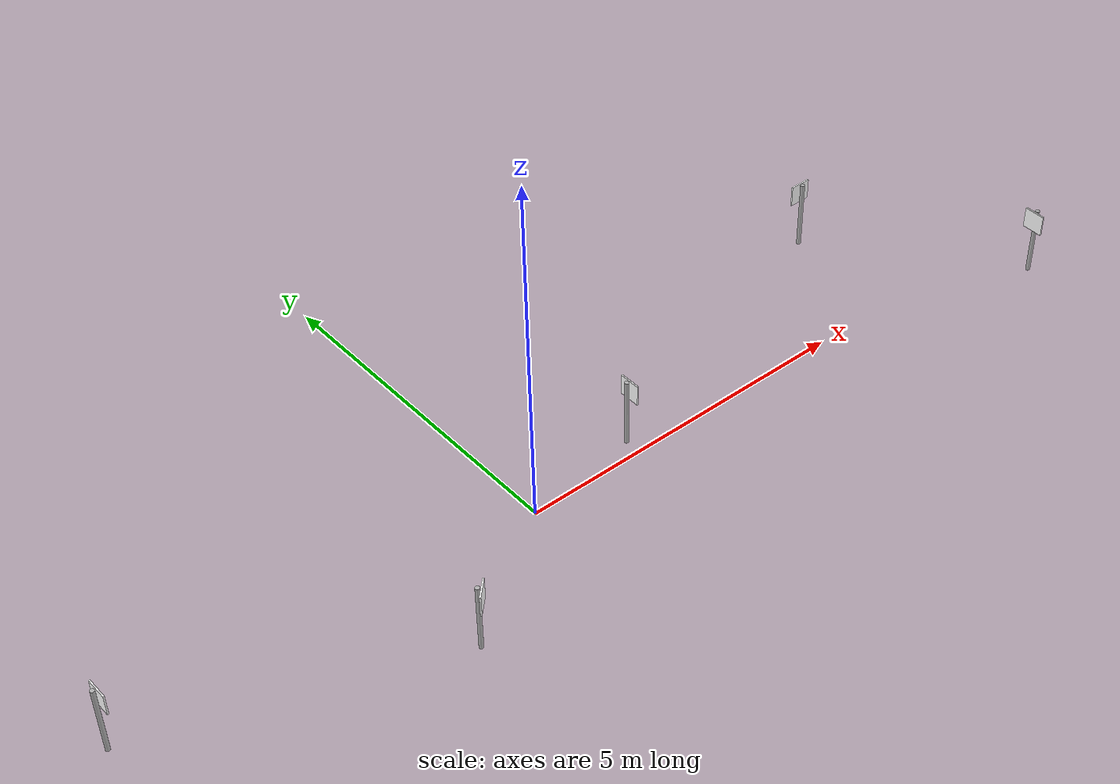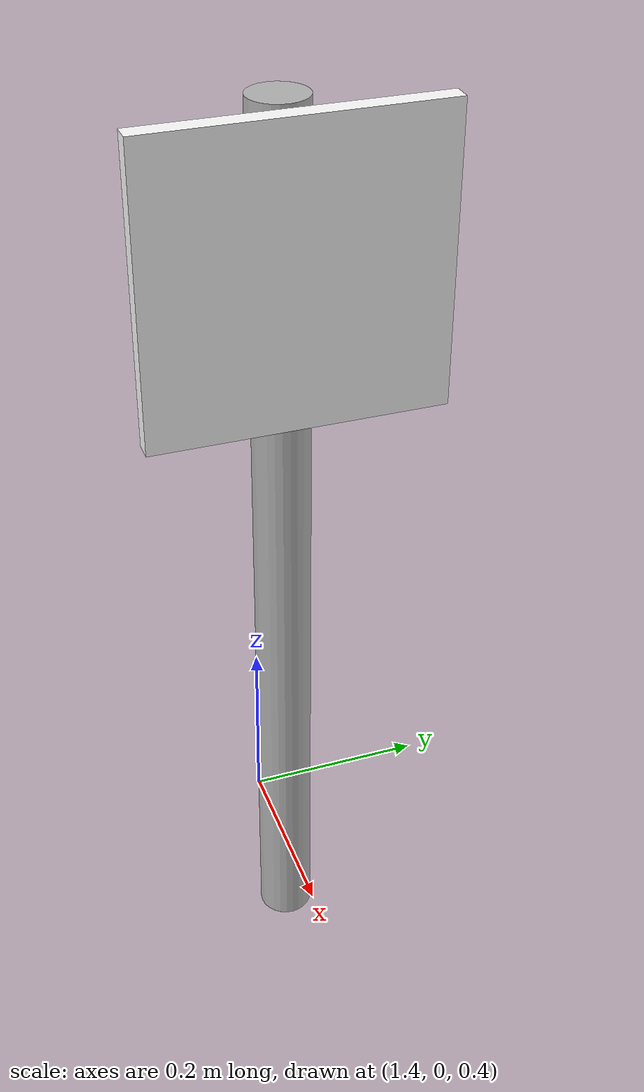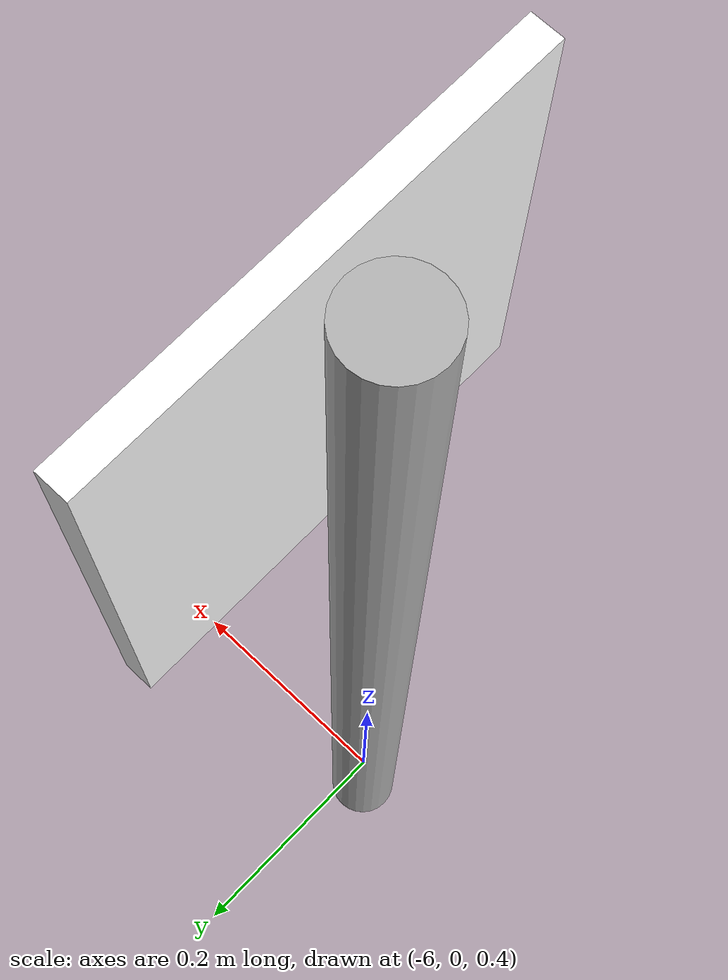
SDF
<sdf version="1.6">
 <world name="mars_yard">
  <light name="sun" type="directional">
   <pose>0 0 50 0 0.3 0.5</pose>
   <diffuse>0.9 0.7 0.5 1</diffuse>
   <specular>0.3 0.2 0.1 1</specular>
   <direction>-0.5 0.3 -0.8</direction>
  </light>
  <scene>
   <ambient>0.3 0.2 0.15 1</ambient>
   <background>0.55 0.35 0.2 1</background>
   <sky><clouds><speed>0</speed></clouds></sky>
  </scene>
  <physics type="ode">
   <real_time_update_rate>1000</real_time_update_rate>
   <max_step_size>0.001</max_step_size>
   <real_time_factor>1</real_time_factor>
   <ode>
    <solver><type>quick</type><iters>150</iters><sor>1.4</sor></solver>
    <constraints>
     <cfm>0.00001</cfm>
     <erp>0.2</erp>
     <contact_max_correcting_vel>100</contact_max_correcting_vel>
     <contact_surface_layer>0.001</contact_surface_layer>
    </constraints>
   </ode>
  </physics>
  <model name="aruco_stand_0">
   <static>true</static>
   <pose>1.5 0 0.3 0 0 0</pose>
   <link name="pole">
    <collision name="col">
     <geometry><cylinder><radius>0.03</radius><length>1.0</length></cylinder></geometry>
    </collision>
    <visual name="vis">
     <pose>0 0 0.5 0 0 0</pose>
     <geometry><cylinder><radius>0.03</radius><length>1.0</length></cylinder></geometry>
     <material><ambient>0.6 0.6 0.6 1</ambient><diffuse>0.7 0.7 0.7 1</diffuse></material>
    </visual>
   </link>
   <link name="board">
    <pose>0.05 0 0.85 0 0 0</pose>
    <collision name="col"><geometry><box><size>0.02 0.3 0.3</size></box></geometry></collision>
    <visual name="vis">
     <geometry><box><size>0.02 0.3 0.3</size></box></geometry>
     <material><ambient>1 1 1 1</ambient><diffuse>1 1 1 1</diffuse></material>
    </visual>
   </link>
   <joint name="pole_board" type="fixed"><parent>pole</parent><child>board</child></joint>
  </model>
  <model name="aruco_stand_1">
   <static>true</static>
   <pose>6.0 1.5 0.3 0 0 1.57</pose>
   <link name="pole">
    <collision name="col">
     <geometry><cylinder><radius>0.03</radius><length>1.0</length></cylinder></geometry>
    </collision>
    <visual name="vis">
     <pose>0 0 0.5 0 0 0</pose>
     <geometry><cylinder><radius>0.03</radius><length>1.0</length></cylinder></geometry>
     <material><ambient>0.6 0.6 0.6 1</ambient><diffuse>0.7 0.7 0.7 1</diffuse></material>
    </visual>
   </link>
   <link name="board">
    <pose>0.05 0 0.85 0 0 0</pose>
    <collision name="col"><geometry><box><size>0.02 0.3 0.3</size></box></geometry></collision>
    <visual name="vis">
     <geometry><box><size>0.02 0.3 0.3</size></box></geometry>
     <material><ambient>1 1 1 1</ambient><diffuse>1 1 1 1</diffuse></material>
    </visual>
   </link>
   <joint name="pole_board" type="fixed"><parent>pole</parent><child>board</child></joint>
  </model>
  <model name="aruco_stand_2">
   <static>true</static>
   <pose>-2.0 -1.5 0.3 0 0 -0.785</pose>
   <link name="pole">
    <collision name="col">
     <geometry><cylinder><radius>0.03</radius><length>1.0</length></cylinder></geometry>
    </collision>
    <visual name="vis">
     <pose>0 0 0.5 0 0 0</pose>
     <geometry><cylinder><radius>0.03</radius><length>1.0</length></cylinder></geometry>
     <material><ambient>0.6 0.6 0.6 1</ambient><diffuse>0.7 0.7 0.7 1</diffuse></material>
    </visual>
   </link>
   <link name="board">
    <pose>0.05 0 0.85 0 0 0</pose>
    <collision name="col"><geometry><box><size>0.02 0.3 0.3</size></box></geometry></collision>
    <visual name="vis">
     <geometry><box><size>0.02 0.3 0.3</size></box></geometry>
     <material><ambient>1 1 1 1</ambient><diffuse>1 1 1 1</diffuse></material>
    </visual>
   </link>
   <joint name="pole_board" type="fixed"><parent>pole</parent><child>board</child></joint>
  </model>
  <model name="aruco_stand_3">
   <static>true</static>
   <pose>-6.0 0 0.3 0 0 0</pose>
   <link name="pole">
    <collision name="col">
     <geometry><cylinder><radius>0.03</radius><length>1.0</length></cylinder></geometry>
    </collision>
    <visual name="vis">
     <pose>0 0 0.5 0 0 0</pose>
     <geometry><cylinder><radius>0.03</radius><length>1.0</length></cylinder></geometry>
     <material><ambient>0.6 0.6 0.6 1</ambient><diffuse>0.7 0.7 0.7 1</diffuse></material>
    </visual>
   </link>
   <link name="board">
    <pose>0.05 0 0.85 0 0 0</pose>
    <collision name="col"><geometry><box><size>0.02 0.3 0.3</size></box></geometry></collision>
    <visual name="vis">
     <geometry><box><size>0.02 0.3 0.3</size></box></geometry>
     <material><ambient>1 1 1 1</ambient><diffuse>1 1 1 1</diffuse></material>
    </visual>
   </link>
   <joint name="pole_board" type="fixed"><parent>pole</parent><child>board</child></joint>
  </model>
  <model name="aruco_stand_4">
   <static>true</static>
   <pose>8.0 -1.0 0.3 0 0 3.14</pose>
   <link name="pole">
    <collision name="col">
     <geometry><cylinder><radius>0.03</radius><length>1.0</length></cylinder></geometry>
    </collision>
    <visual name="vis">
     <pose>0 0 0.5 0 0 0</pose>
     <geometry><cylinder><radius>0.03</radius><length>1.0</length></cylinder></geometry>
     <material><ambient>0.6 0.6 0.6 1</ambient><diffuse>0.7 0.7 0.7 1</diffuse></material>
    </visual>
   </link>
   <link name="board">
    <pose>0.05 0 0.85 0 0 0</pose>
    <collision name="col"><geometry><box><size>0.02 0.3 0.3</size></box></geometry></collision>
    <visual name="vis">
     <geometry><box><size>0.02 0.3 0.3</size></box></geometry>
     <material><ambient>1 1 1 1</ambient><diffuse>1 1 1 1</diffuse></material>
    </visual>
   </link>
   <joint name="pole_board" type="fixed"><parent>pole</parent><child>board</child></joint>
  </model>
  <model name="wall_north">
   <static>true</static>
   <pose>0 11 0.5 0 0 0</pose>
   <link name="link">
    <collision name="col"><geometry><box><size>22 0.2 1.0</size></box></geometry></collision>
   </link>
  </model>
  <model name="wall_south">
   <static>true</static>
   <pose>0 -11 0.5 0 0 0</pose>
   <link name="link">
    <collision name="col"><geometry><box><size>22 0.2 1.0</size></box></geometry></collision>
   </link>
  </model>
  <model name="wall_east">
   <static>true</static>
   <pose>11 0 0.5 0 0 0</pose>
   <link name="link">
    <collision name="col"><geometry><box><size>0.2 22 1.0</size></box></geometry></collision>
   </link>
  </model>
  <model name="wall_west">
   <static>true</static>
   <pose>-11 0 0.5 0 0 0</pose>
   <link name="link">
    <collision name="col"><geometry><box><size>0.2 22 1.0</size></box></geometry></collision>
   </link>
  </model>
 </world>
</sdf>
